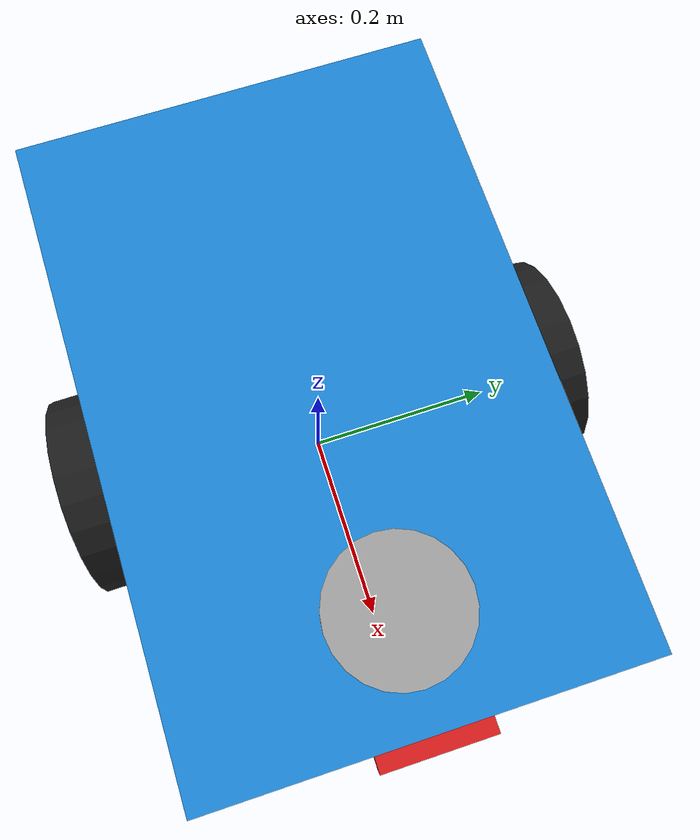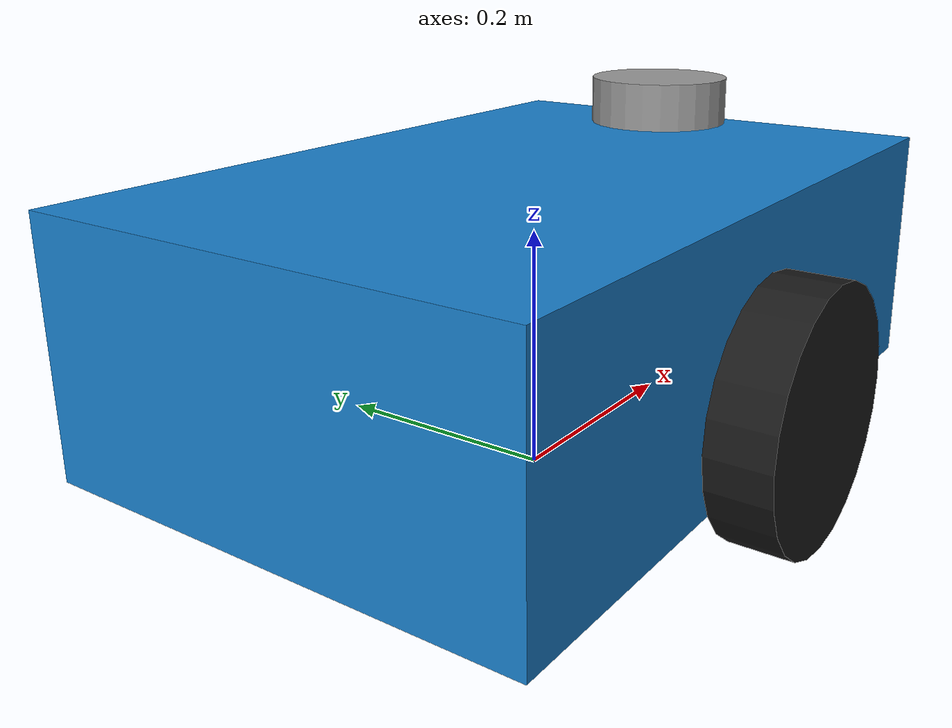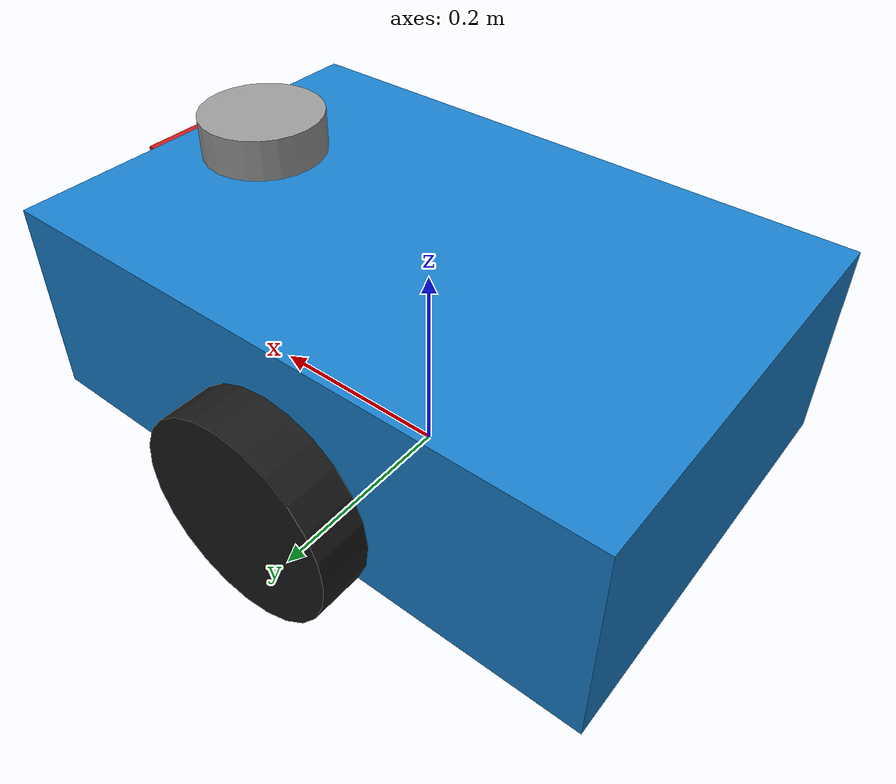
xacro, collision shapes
<?xml version="1.0"?>
<robot name="two_wheeled_robot" xmlns:xacro="http://www.ros.org/wiki/xacro">
<xacro:arg name="mesh_path" default="package://robot_description_mai_mohsen/meshes/"/>
<xacro:include filename="$(find robot_description_mai_mohsen)/urdf/robot_description.gazebo"/>

  <xacro:property name="base_length" value="0.6"/>
  <xacro:property name="base_width" value="0.4"/>
  <xacro:property name="base_height" value="0.2"/>
  <xacro:property name="base_mass" value="5.0"/>

  <xacro:property name="wheel_radius" value="0.1"/>
  <xacro:property name="wheel_width" value="0.05"/>
  <xacro:property name="wheel_mass" value="0.5"/>

  <xacro:property name="wheel_y_offset" value="0.225"/>
  <xacro:property name="wheel_z_offset" value="-0.05"/>

  <xacro:property name="caster_radius" value="0.05"/>
  <xacro:property name="caster_mass" value="0.2"/>
  <xacro:property name="caster_x_offset" value="0.2"/>

  <link name="base_footprint"/>

  <joint name="base_footprint_joint" type="fixed">
    <parent link="base_footprint"/>
    <child link="base_link"/>
    <origin xyz="0 0 0.15" rpy="0 0 0"/>
  </joint>

  <link name="base_link">
    <visual>
      <geometry>
        <box size="${base_length} ${base_width} ${base_height}"/>
      </geometry>
      <material name="chassis_color">
        <color rgba="0.1 0.5 0.8 1.0"/>
      </material>
    </visual>
    <collision>
      <geometry>
        <box size="${base_length} ${base_width} ${base_height}"/>
      </geometry>
    </collision>
    <inertial>
      <mass value="${base_mass}"/>
      <origin xyz="0 0 0" rpy="0 0 0"/>
      <inertia ixx="${(1/12) * base_mass * (base_width*base_width + base_height*base_height)}" ixy="0.0" ixz="0.0"
               iyy="${(1/12) * base_mass * (base_length*base_length + base_height*base_height)}" iyz="0.0"
               izz="${(1/12) * base_mass * (base_length*base_length + base_width*base_width)}"/>
    </inertial>
  </link>

  <xacro:macro name="wheel" params="prefix y_reflect">
    <joint name="${prefix}_wheel_joint" type="continuous">
      <parent link="base_link"/>
      <child link="${prefix}_wheel_link"/>
      <origin xyz="0 ${y_reflect * wheel_y_offset} ${wheel_z_offset}" rpy="-${pi/2} 0 0"/>
      <axis xyz="0 0 1"/>
    </joint>

    <link name="${prefix}_wheel_link">
      <visual>
        <origin xyz="0 0 0" rpy="0 0 0"/>
        <geometry>
          <cylinder radius="${wheel_radius}" length="${wheel_width}"/>
        </geometry>
        <material name="wheel_color">
          <color rgba="0.1 0.1 0.1 1.0"/>
        </material>
      </visual>
      <collision>
        <origin xyz="0 0 0" rpy="0 0 0"/>
        <geometry>
          <cylinder radius="${wheel_radius}" length="${wheel_width}"/>
        </geometry>
      </collision>
      <inertial>
        <mass value="${wheel_mass}"/>
        <origin xyz="0 0 0" rpy="0 0 0"/>
        <inertia ixx="${(1/12) * wheel_mass * (3*wheel_radius*wheel_radius + wheel_width*wheel_width)}" ixy="0.0" ixz="0.0"
                 iyy="${(1/12) * wheel_mass * (3*wheel_radius*wheel_radius + wheel_width*wheel_width)}" iyz="0.0"
                 izz="${(1/2) * wheel_mass * (wheel_radius*wheel_radius)}"/>
      </inertial>
    </link>
  </xacro:macro>

  <xacro:wheel prefix="left"  y_reflect="1" />
  <xacro:wheel prefix="right" y_reflect="-1" />

  <joint name="caster_wheel_joint" type="fixed">
    <parent link="base_link"/>
    <child link="caster_wheel_link"/>
    <origin xyz="${caster_x_offset} 0 ${wheel_z_offset - (wheel_radius - caster_radius)}" rpy="0 0 0"/>
  </joint>

  <link name="caster_wheel_link">
    <visual>
      <geometry>
        <sphere radius="${caster_radius}"/>
      </geometry>
      <material name="caster_color">
        <color rgba="0.5 0.5 0.5 1.0"/>
      </material>
    </visual>
    <collision>
      <geometry>
        <sphere radius="${caster_radius}"/>
      </geometry>
    </collision>
    <inertial>
      <mass value="${caster_mass}"/>
      <origin xyz="0 0 0" rpy="0 0 0"/>
      <inertia ixx="${(2/5) * caster_mass * caster_radius * caster_radius}" ixy="0.0" ixz="0.0"
               iyy="${(2/5) * caster_mass * caster_radius * caster_radius}" iyz="0.0"
               izz="${(2/5) * caster_mass * caster_radius * caster_radius}"/>
    </inertial>
  </link>

  <joint name="lidar_joint" type="fixed">
    <parent link="base_link"/>
    <child link="lidar_link"/>
    <origin xyz="0.2 0 0.13" rpy="0 0 0"/>
  </joint>

  <link name="lidar_link">
    <visual>
      <origin xyz="0 0 0" rpy="0 0 0"/>
      <geometry>
        <mesh filename="$(arg mesh_path)lidar.STL"/>
      </geometry>
      <material name="lidar_gray">
        <color rgba="0.6 0.6 0.6 1.0"/>
      </material>
    </visual>
    <collision>
      <geometry>
        <cylinder radius="0.06" length="0.04"/>
      </geometry>
    </collision>
    <inertial>
      <mass value="0.2"/>
      <origin xyz="0 0 0" rpy="0 0 0"/>
      <inertia ixx="0.0001" ixy="0.0" ixz="0.0" iyy="0.0001" iyz="0.0" izz="0.0001"/>
    </inertial>
  </link>

  <joint name="camera_joint" type="fixed">
    <parent link="base_link"/>
    <child link="camera_link"/>
    <origin xyz="0.3 0 0.08" rpy="0 0 0"/>
  </joint>

  <link name="camera_link">
    <visual>
      <geometry>
        <mesh filename="$(arg mesh_path)zed.stl"/>
      </geometry>
      <material name="camera_color">
        <color rgba="0.8 0.1 0.1 1.0"/>
      </material>
    </visual>
    <collision>
      <geometry>
        <box size="0.03 0.1 0.03"/>
      </geometry>
    </collision>
    <inertial>
      <mass value="0.1"/>
      <origin xyz="0 0 0" rpy="0 0 0"/>
      <inertia ixx="0.00009" ixy="0.0" ixz="0.0" iyy="0.000015" iyz="0.0" izz="0.00009"/>
    </inertial>
  </link>

</robot>
